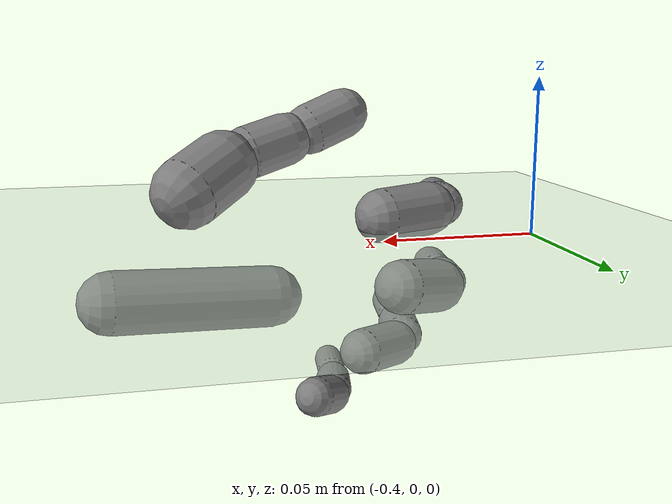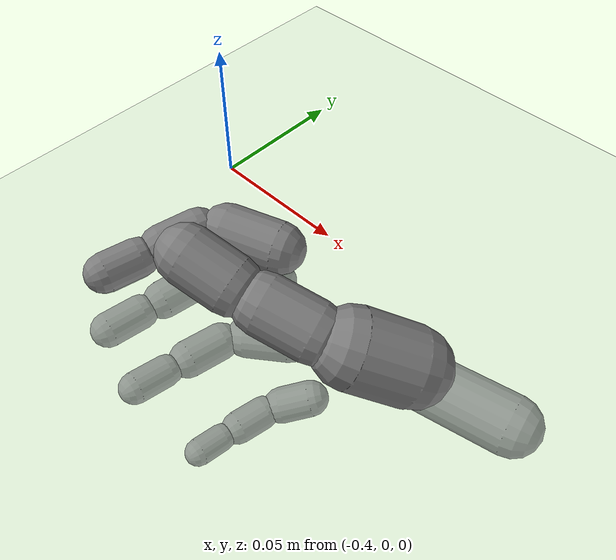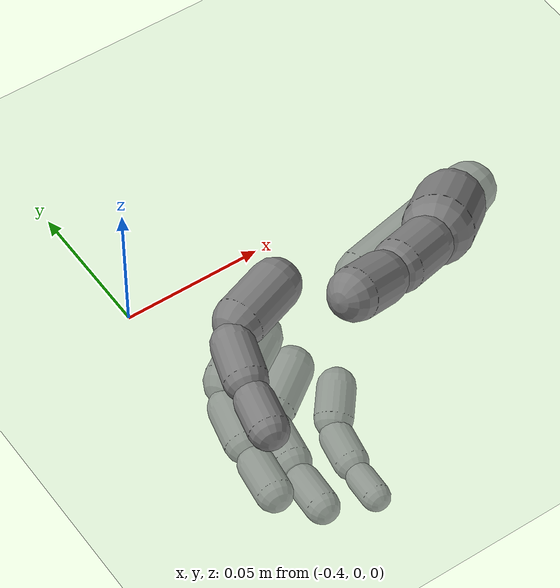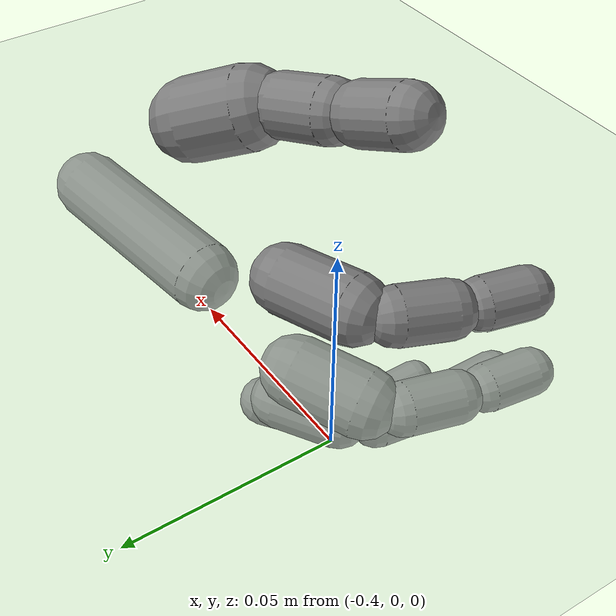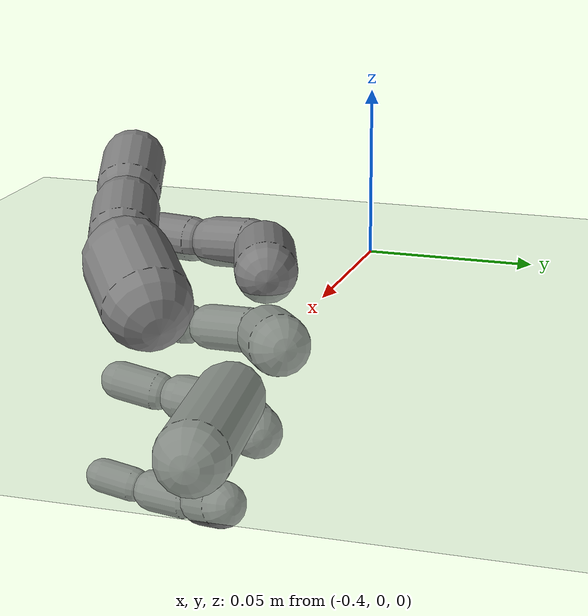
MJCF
<mujoco model="humanoid">
  <compiler coordinate="local"/>
  <statistic extent="2" center="0 0 1"/>
  <option timestep="0.00555"/>
  <default>
    <motor ctrlrange="-1 1" ctrllimited="true"/>
    <geom type="capsule" condim="1" friction="1.0 0.05 0.05" solimp=".9 .99 .003" solref=".015 1"/>
    <joint type="hinge" damping="0.1" stiffness="5" armature=".007" limited="true" solimplimit="0 .99 .01"/>
    <site size=".04" group="3"/>
    <default class="force-torque">
      <site type="box" size=".01 .01 .02" rgba="1 0 0 1"/>
    </default>
    <default class="touch">
      <site type="capsule" rgba="0 0 1 .3"/>
    </default>
  </default>
  <asset>
    <texture type="skybox" builtin="gradient" rgb1=".4 .5 .6" rgb2="0 0 0" width="100" height="100"/>
    <texture builtin="flat" height="1278" mark="cross" markrgb="1 1 1" name="texgeom" random="0.01" rgb1="0.8 0.6 0.4" rgb2="0.8 0.6 0.4" type="cube" width="127"/>
    <texture builtin="checker" height="100" name="texplane" rgb1="0 0 0" rgb2="0.8 0.8 0.8" type="2d" width="100"/>
    <material name="MatPlane" reflectance="0.5" shininess="1" specular="1" texrepeat="60 60" texture="texplane"/>
    <material name="geom" texture="texgeom" texuniform="true"/>
  </asset>
  <worldbody>
    <light cutoff="100" diffuse="1 1 1" dir="-0 0 -1.3" directional="true" exponent="1" pos="0 0 1.3" specular=".1 .1 .1"/>
    <geom conaffinity="1" condim="3" name="floor" pos="0 0 0" rgba="0.8 0.9 0.8 1" size="100 100 .2" type="plane" material="MatPlane"/>
    <body name="R_Wrist" pos="-0.2493 -0.0045 -0.0153">
                    <joint name="R_Wrist_x" type="hinge" pos="0 0 0" axis="1 0 0" stiffness="100" damping="10" armature="0.02" range="-180.0000 180.0000"/>
                    <joint name="R_Wrist_y" type="hinge" pos="0 0 0" axis="0 1 0" stiffness="100" damping="10" armature="0.02" range="-180.0000 180.0000"/>
                    <joint name="R_Wrist_z" type="hinge" pos="0 0 0" axis="0 0 1" stiffness="100" damping="10" armature="0.02" range="-180.0000 180.0000"/>
                    <geom type="capsule" contype="1" conaffinity="1" density="1000" fromto="-0.0169 -0.0029 -0.0012 -0.0677 -0.0116 -0.0046" size="0.01"/>
                    <body name="R_Index1" pos="-0.0999 -0.0118 0.0196">
                      <joint name="R_Index1_x" type="hinge" pos="0 0 0" axis="1 0 0" stiffness="100" damping="10" armature="0.02" range="-180.0000 180.0000"/>
                      <joint name="R_Index1_y" type="hinge" pos="0 0 0" axis="0 1 0" stiffness="100" damping="10" armature="0.02" range="-180.0000 180.0000"/>
                      <joint name="R_Index1_z" type="hinge" pos="0 0 0" axis="0 0 1" stiffness="100" damping="10" armature="0.02" range="-180.0000 180.0000"/>
                      <geom type="capsule" contype="1" conaffinity="1" density="1000" fromto="-0.0060 -0.0022 0.0002 -0.0241 -0.0089 0.0009" size="0.0092"/>
                      <body name="R_Index2" pos="-0.0301 -0.0112 0.0012">
                        <joint name="R_Index2_x" type="hinge" pos="0 0 0" axis="1 0 0" stiffness="100" damping="10" armature="0.02" range="-180.0000 180.0000"/>
                        <joint name="R_Index2_y" type="hinge" pos="0 0 0" axis="0 1 0" stiffness="100" damping="10" armature="0.02" range="-180.0000 180.0000"/>
                        <joint name="R_Index2_z" type="hinge" pos="0 0 0" axis="0 0 1" stiffness="100" damping="10" armature="0.02" range="-180.0000 180.0000"/>
                        <geom type="capsule" contype="1" conaffinity="1" density="1000" fromto="-0.0013 -0.0043 -0.0005 -0.0052 -0.0173 -0.0019" size="0.0076"/>
                        <body name="R_Index3" pos="-0.0065 -0.0216 -0.0024">
                          <joint name="R_Index3_x" type="hinge" pos="0 0 0" axis="1 0 0" stiffness="100" damping="10" armature="0.02" range="-180.0000 180.0000"/>
                          <joint name="R_Index3_y" type="hinge" pos="0 0 0" axis="0 1 0" stiffness="100" damping="10" armature="0.02" range="-180.0000 180.0000"/>
                          <joint name="R_Index3_z" type="hinge" pos="0 0 0" axis="0 0 1" stiffness="100" damping="10" armature="0.02" range="-180.0000 180.0000"/>
                          <geom type="capsule" contype="1" conaffinity="1" density="1000" fromto="-0.0009 -0.0039 -0.0001 -0.0036 -0.0157 -0.0003" size="0.0069"/>
                        </body>
                      </body>
                    </body>
                    <body name="R_Middle1" pos="-0.1074 -0.0094 -0.0037">
                      <joint name="R_Middle1_x" type="hinge" pos="0 0 0" axis="1 0 0" stiffness="100" damping="10" armature="0.02" range="-180.0000 180.0000"/>
                      <joint name="R_Middle1_y" type="hinge" pos="0 0 0" axis="0 1 0" stiffness="100" damping="10" armature="0.02" range="-180.0000 180.0000"/>
                      <joint name="R_Middle1_z" type="hinge" pos="0 0 0" axis="0 0 1" stiffness="100" damping="10" armature="0.02" range="-180.0000 180.0000"/>
                      <geom type="capsule" contype="1" conaffinity="1" density="1000" fromto="-0.0053 -0.0030 -0.0009 -0.0212 -0.0122 -0.0037" size="0.0094"/>
                      <body name="R_Middle2" pos="-0.0265 -0.0152 -0.0046">
                        <joint name="R_Middle2_x" type="hinge" pos="0 0 0" axis="1 0 0" stiffness="100" damping="10" armature="0.02" range="-180.0000 180.0000"/>
                        <joint name="R_Middle2_y" type="hinge" pos="0 0 0" axis="0 1 0" stiffness="100" damping="10" armature="0.02" range="-180.0000 180.0000"/>
                        <joint name="R_Middle2_z" type="hinge" pos="0 0 0" axis="0 0 1" stiffness="100" damping="10" armature="0.02" range="-180.0000 180.0000"/>
                        <geom type="capsule" contype="1" conaffinity="1" density="1000" fromto="-0.0010 -0.0047 -0.0004 -0.0040 -0.0187 -0.0015" size="0.0071"/>
                        <body name="R_Middle3" pos="-0.005 -0.0233 -0.0019">
                          <joint name="R_Middle3_x" type="hinge" pos="0 0 0" axis="1 0 0" stiffness="100" damping="10" armature="0.02" range="-180.0000 180.0000"/>
                          <joint name="R_Middle3_y" type="hinge" pos="0 0 0" axis="0 1 0" stiffness="100" damping="10" armature="0.02" range="-180.0000 180.0000"/>
                          <joint name="R_Middle3_z" type="hinge" pos="0 0 0" axis="0 0 1" stiffness="100" damping="10" armature="0.02" range="-180.0000 180.0000"/>
                          <geom type="capsule" contype="1" conaffinity="1" density="1000" fromto="-0.0006 -0.0043 0.0000 -0.0024 -0.0171 0.0001" size="0.0064"/>
                        </body>
                      </body>
                    </body>
                    <body name="R_Pinky1" pos="-0.082 -0.0176 -0.0435">
                      <joint name="R_Pinky1_x" type="hinge" pos="0 0 0" axis="1 0 0" stiffness="100" damping="10" armature="0.02" range="-180.0000 180.0000"/>
                      <joint name="R_Pinky1_y" type="hinge" pos="0 0 0" axis="0 1 0" stiffness="100" damping="10" armature="0.02" range="-180.0000 180.0000"/>
                      <joint name="R_Pinky1_z" type="hinge" pos="0 0 0" axis="0 0 1" stiffness="100" damping="10" armature="0.02" range="-180.0000 180.0000"/>
                      <geom type="capsule" contype="1" conaffinity="1" density="1000" fromto="-0.0024 -0.0029 -0.0011 -0.0097 -0.0116 -0.0043" size="0.007"/>
                      <body name="R_Pinky2" pos="-0.0121 -0.0144 -0.0054">
                        <joint name="R_Pinky2_x" type="hinge" pos="0 0 0" axis="1 0 0" stiffness="100" damping="10" armature="0.02" range="-180.0000 180.0000"/>
                        <joint name="R_Pinky2_y" type="hinge" pos="0 0 0" axis="0 1 0" stiffness="100" damping="10" armature="0.02" range="-180.0000 180.0000"/>
                        <joint name="R_Pinky2_z" type="hinge" pos="0 0 0" axis="0 0 1" stiffness="100" damping="10" armature="0.02" range="-180.0000 180.0000"/>
                        <geom type="capsule" contype="1" conaffinity="1" density="1000" fromto="-0.0008 -0.0038 0.0000 -0.0030 -0.0151 0.0001" size="0.0063"/>
                        <body name="R_Pinky3" pos="-0.0038 -0.0189 0.0002">
                          <joint name="R_Pinky3_x" type="hinge" pos="0 0 0" axis="1 0 0" stiffness="100" damping="10" armature="0.02" range="-180.0000 180.0000"/>
                          <joint name="R_Pinky3_y" type="hinge" pos="0 0 0" axis="0 1 0" stiffness="100" damping="10" armature="0.02" range="-180.0000 180.0000"/>
                          <joint name="R_Pinky3_z" type="hinge" pos="0 0 0" axis="0 0 1" stiffness="100" damping="10" armature="0.02" range="-180.0000 180.0000"/>
                          <geom type="capsule" contype="1" conaffinity="1" density="1000" fromto="-0.0004 -0.0034 0.0004 -0.0014 -0.0135 0.0017" size="0.0052"/>
                        </body>
                      </body>
                    </body>
                    <body name="R_Ring1" pos="-0.0954 -0.0124 -0.0271">
                      <joint name="R_Ring1_x" type="hinge" pos="0 0 0" axis="1 0 0" stiffness="100" damping="10" armature="0.02" range="-180.0000 180.0000"/>
                      <joint name="R_Ring1_y" type="hinge" pos="0 0 0" axis="0 1 0" stiffness="100" damping="10" armature="0.02" range="-180.0000 180.0000"/>
                      <joint name="R_Ring1_z" type="hinge" pos="0 0 0" axis="0 0 1" stiffness="100" damping="10" armature="0.02" range="-180.0000 180.0000"/>
                      <geom type="capsule" contype="1" conaffinity="1" density="1000" fromto="-0.0047 -0.0032 -0.0004 -0.0188 -0.0128 -0.0015" size="0.0079"/>
                      <body name="R_Ring2" pos="-0.0236 -0.0161 -0.0019">
                        <joint name="R_Ring2_x" type="hinge" pos="0 0 0" axis="1 0 0" stiffness="100" damping="10" armature="0.02" range="-180.0000 180.0000"/>
                        <joint name="R_Ring2_y" type="hinge" pos="0 0 0" axis="0 1 0" stiffness="100" damping="10" armature="0.02" range="-180.0000 180.0000"/>
                        <joint name="R_Ring2_z" type="hinge" pos="0 0 0" axis="0 0 1" stiffness="100" damping="10" armature="0.02" range="-180.0000 180.0000"/>
                        <geom type="capsule" contype="1" conaffinity="1" density="1000" fromto="-0.0009 -0.0047 0.0002 -0.0034 -0.0188 0.0007" size="0.0072"/>
                        <body name="R_Ring3" pos="-0.0043 -0.0235 0.0008">
                          <joint name="R_Ring3_x" type="hinge" pos="0 0 0" axis="1 0 0" stiffness="100" damping="10" armature="0.02" range="-180.0000 180.0000"/>
                          <joint name="R_Ring3_y" type="hinge" pos="0 0 0" axis="0 1 0" stiffness="100" damping="10" armature="0.02" range="-180.0000 180.0000"/>
                          <joint name="R_Ring3_z" type="hinge" pos="0 0 0" axis="0 0 1" stiffness="100" damping="10" armature="0.02" range="-180.0000 180.0000"/>
                          <geom type="capsule" contype="1" conaffinity="1" density="1000" fromto="-0.0005 -0.0043 0.0006 -0.0018 -0.0172 0.0023" size="0.006"/>
                        </body>
                      </body>
                    </body>
                    <body name="R_Thumb1" pos="-0.0386 -0.0211 0.0259">
                      <joint name="R_Thumb1_x" type="hinge" pos="0 0 0" axis="1 0 0" stiffness="100" damping="10" armature="0.02" range="-180.0000 180.0000"/>
                      <joint name="R_Thumb1_y" type="hinge" pos="0 0 0" axis="0 1 0" stiffness="100" damping="10" armature="0.02" range="-180.0000 180.0000"/>
                      <joint name="R_Thumb1_z" type="hinge" pos="0 0 0" axis="0 0 1" stiffness="100" damping="10" armature="0.02" range="-180.0000 180.0000"/>
                      <geom type="capsule" contype="1" conaffinity="1" density="1000" fromto="-0.0043 -0.0035 0.0023 -0.0173 -0.0141 0.0093" size="0.0122"/>
                      <body name="R_Thumb2" pos="-0.0216 -0.0176 0.0116">
                        <joint name="R_Thumb2_x" type="hinge" pos="0 0 0" axis="1 0 0" stiffness="100" damping="10" armature="0.02" range="-180.0000 180.0000"/>
                        <joint name="R_Thumb2_y" type="hinge" pos="0 0 0" axis="0 1 0" stiffness="100" damping="10" armature="0.02" range="-180.0000 180.0000"/>
                        <joint name="R_Thumb2_z" type="hinge" pos="0 0 0" axis="0 0 1" stiffness="100" damping="10" armature="0.02" range="-180.0000 180.0000"/>
                        <geom type="capsule" contype="1" conaffinity="1" density="1000" fromto="-0.0048 -0.0017 0.0013 -0.0192 -0.0067 0.0052" size="0.0093"/>
                        <body name="R_Thumb3" pos="-0.024 -0.0084 0.0065">
                          <joint name="R_Thumb3_x" type="hinge" pos="0 0 0" axis="1 0 0" stiffness="100" damping="10" armature="0.02" range="-180.0000 180.0000"/>
                          <joint name="R_Thumb3_y" type="hinge" pos="0 0 0" axis="0 1 0" stiffness="100" damping="10" armature="0.02" range="-180.0000 180.0000"/>
                          <joint name="R_Thumb3_z" type="hinge" pos="0 0 0" axis="0 0 1" stiffness="100" damping="10" armature="0.02" range="-180.0000 180.0000"/>
                          <geom type="capsule" contype="1" conaffinity="1" density="1000" fromto="-0.0044 -0.0013 0.0017 -0.0176 -0.0051 0.0068" size="0.009"/>
                        </body>
                      </body>
                    </body>

    </body>
  </worldbody>
  <actuator>
    <motor name="R_Wrist_x" joint="R_Wrist_x" gear="500"/>
    <motor name="R_Wrist_y" joint="R_Wrist_y" gear="500"/>
    <motor name="R_Wrist_z" joint="R_Wrist_z" gear="500"/>
    <motor name="R_Index1_x" joint="R_Index1_x" gear="500"/>
    <motor name="R_Index1_y" joint="R_Index1_y" gear="500"/>
    <motor name="R_Index1_z" joint="R_Index1_z" gear="500"/>
    <motor name="R_Index2_x" joint="R_Index2_x" gear="500"/>
    <motor name="R_Index2_y" joint="R_Index2_y" gear="500"/>
    <motor name="R_Index2_z" joint="R_Index2_z" gear="500"/>
    <motor name="R_Index3_x" joint="R_Index3_x" gear="500"/>
    <motor name="R_Index3_y" joint="R_Index3_y" gear="500"/>
    <motor name="R_Index3_z" joint="R_Index3_z" gear="500"/>
    <motor name="R_Middle1_x" joint="R_Middle1_x" gear="500"/>
    <motor name="R_Middle1_y" joint="R_Middle1_y" gear="500"/>
    <motor name="R_Middle1_z" joint="R_Middle1_z" gear="500"/>
    <motor name="R_Middle2_x" joint="R_Middle2_x" gear="500"/>
    <motor name="R_Middle2_y" joint="R_Middle2_y" gear="500"/>
    <motor name="R_Middle2_z" joint="R_Middle2_z" gear="500"/>
    <motor name="R_Middle3_x" joint="R_Middle3_x" gear="500"/>
    <motor name="R_Middle3_y" joint="R_Middle3_y" gear="500"/>
    <motor name="R_Middle3_z" joint="R_Middle3_z" gear="500"/>
    <motor name="R_Pinky1_x" joint="R_Pinky1_x" gear="500"/>
    <motor name="R_Pinky1_y" joint="R_Pinky1_y" gear="500"/>
    <motor name="R_Pinky1_z" joint="R_Pinky1_z" gear="500"/>
    <motor name="R_Pinky2_x" joint="R_Pinky2_x" gear="500"/>
    <motor name="R_Pinky2_y" joint="R_Pinky2_y" gear="500"/>
    <motor name="R_Pinky2_z" joint="R_Pinky2_z" gear="500"/>
    <motor name="R_Pinky3_x" joint="R_Pinky3_x" gear="500"/>
    <motor name="R_Pinky3_y" joint="R_Pinky3_y" gear="500"/>
    <motor name="R_Pinky3_z" joint="R_Pinky3_z" gear="500"/>
    <motor name="R_Ring1_x" joint="R_Ring1_x" gear="500"/>
    <motor name="R_Ring1_y" joint="R_Ring1_y" gear="500"/>
    <motor name="R_Ring1_z" joint="R_Ring1_z" gear="500"/>
    <motor name="R_Ring2_x" joint="R_Ring2_x" gear="500"/>
    <motor name="R_Ring2_y" joint="R_Ring2_y" gear="500"/>
    <motor name="R_Ring2_z" joint="R_Ring2_z" gear="500"/>
    <motor name="R_Ring3_x" joint="R_Ring3_x" gear="500"/>
    <motor name="R_Ring3_y" joint="R_Ring3_y" gear="500"/>
    <motor name="R_Ring3_z" joint="R_Ring3_z" gear="500"/>
    <motor name="R_Thumb1_x" joint="R_Thumb1_x" gear="500"/>
    <motor name="R_Thumb1_y" joint="R_Thumb1_y" gear="500"/>
    <motor name="R_Thumb1_z" joint="R_Thumb1_z" gear="500"/>
    <motor name="R_Thumb2_x" joint="R_Thumb2_x" gear="500"/>
    <motor name="R_Thumb2_y" joint="R_Thumb2_y" gear="500"/>
    <motor name="R_Thumb2_z" joint="R_Thumb2_z" gear="500"/>
    <motor name="R_Thumb3_x" joint="R_Thumb3_x" gear="500"/>
    <motor name="R_Thumb3_y" joint="R_Thumb3_y" gear="500"/>
    <motor name="R_Thumb3_z" joint="R_Thumb3_z" gear="500"/>
  </actuator>
  <contact/>
  <size njmax="700" nconmax="700"/>
</mujoco>
